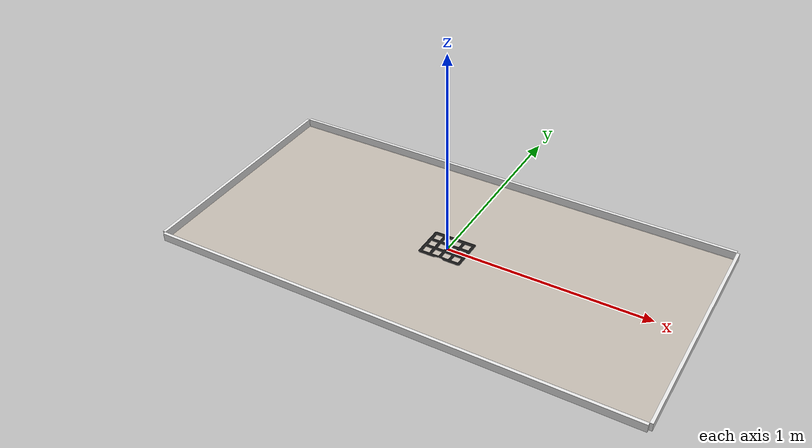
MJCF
<mujoco model="wro_2026_senior_mosaic_masters">
  <compiler angle="degree" coordinate="local"/>

  <option timestep="0.001" iterations="20" solver="Newton"/>

  <asset>
    <texture name="mat_tex" type="2d" file="mat.png"/>
    <material name="mat" texture="mat_tex" texrepeat="1 1"
              specular="0" shininess="0" reflectance="0"/>
    <material name="wall" rgba="0.90 0.90 0.90 1"/>

    <mesh name="mosaic_frame" file="mosaic_frame.stl"
          scale="0.001 0.001 0.001"/>

    <material name="lego_red"     rgba="0.85 0.10 0.10 1"/>
    <material name="lego_yellow"  rgba="0.95 0.80 0.10 1"/>
    <material name="lego_green"   rgba="0.15 0.70 0.25 1"/>
    <material name="lego_blue"    rgba="0.10 0.30 0.80 1"/>
    <material name="lego_white"   rgba="0.95 0.95 0.95 1"/>
    <material name="lego_black"   rgba="0.08 0.08 0.08 1"/>
    <material name="lego_gray"    rgba="0.55 0.55 0.58 1"/>
  </asset>

  <worldbody>
    <light pos=" 0.6 0 1.6" dir="0 0 -1" diffuse="0.95 0.95 0.95"/>
    <light pos="-0.6 0 1.6" dir="0 0 -1" diffuse="0.65 0.65 0.65"/>

    <!-- ===== MAT (2.362 × 1.143 m, printed texture) ===== -->
    <geom name="mat" type="plane" size="1.181 0.5715 0.01"
          material="mat" friction="0.8 0.02 0.0001"/>

    <geom name="wall_n" type="box" pos=" 0     0.579  0.02"
          size="1.181 0.0075 0.02" material="wall"/>
    <geom name="wall_s" type="box" pos=" 0    -0.579  0.02"
          size="1.181 0.0075 0.02" material="wall"/>
    <geom name="wall_e" type="box" pos=" 1.188 0      0.02"
          size="0.0075 0.5715 0.02" material="wall"/>
    <geom name="wall_w" type="box" pos="-1.188 0      0.02"
          size="0.0075 0.5715 0.02" material="wall"/>

    <geom name="mosaic_frame" type="mesh" mesh="mosaic_frame"
          pos="-0.075 0.050 0" material="lego_black"/>

    <lego_prop name="barrier_red_a"   ldr="props/senior_barrier_red_blue.ldr"  pos="-0.20 0.18 0.0"  mass="0.070"/>
    <lego_prop name="barrier_red_b"   ldr="props/senior_barrier_red_blue.ldr"  pos="0.20 0.18 0.0"   mass="0.070"/>
    <lego_prop name="barrier_black_a" ldr="props/senior_barrier_black_red.ldr" pos="-0.20 -0.18 0.0" mass="0.070"/>
    <lego_prop name="barrier_black_b" ldr="props/senior_barrier_black_red.ldr" pos="0.20 -0.18 0.0"  mass="0.070"/>

    <!-- Mission 3.1: 3 tools. -->
    <lego_prop name="rect_trowel"    ldr="props/rect_trowel.ldr"    pos="0.80 -0.45 0.0" mass="0.060"/>
    <lego_prop name="cement_bowl"    ldr="props/cement_bowl.ldr"    pos="0.95 -0.45 0.0" mass="0.050"/>
    <lego_prop name="masonry_trowel" ldr="props/masonry_trowel.ldr" pos="1.05 -0.45 0.0" mass="0.050"/>

    <!-- Mission 3.2: 24 mosaic tiles (6 of each: yellow/blue/green/white).
         All from one mosaic_tile.ldr; positions arranged on the
         left-end mat reservoir in a 4x6 grid. -->
    <lego_prop name="mosaic_tile_yellow_1" ldr="props/mosaic_tile.ldr" pos="-1.05 -0.30 0.0" mass="0.010" color="yellow"/>
    <lego_prop name="mosaic_tile_yellow_2" ldr="props/mosaic_tile.ldr" pos="-1.05 -0.18 0.0" mass="0.010" color="yellow"/>
    <lego_prop name="mosaic_tile_yellow_3" ldr="props/mosaic_tile.ldr" pos="-1.05 -0.06 0.0" mass="0.010" color="yellow"/>
    <lego_prop name="mosaic_tile_yellow_4" ldr="props/mosaic_tile.ldr" pos="-1.05 0.06 0.0"  mass="0.010" color="yellow"/>
    <lego_prop name="mosaic_tile_yellow_5" ldr="props/mosaic_tile.ldr" pos="-1.05 0.18 0.0"  mass="0.010" color="yellow"/>
    <lego_prop name="mosaic_tile_yellow_6" ldr="props/mosaic_tile.ldr" pos="-1.05 0.30 0.0"  mass="0.010" color="yellow"/>
    <lego_prop name="mosaic_tile_blue_1"   ldr="props/mosaic_tile.ldr" pos="-0.95 -0.30 0.0" mass="0.010" color="blue"/>
    <lego_prop name="mosaic_tile_blue_2"   ldr="props/mosaic_tile.ldr" pos="-0.95 -0.18 0.0" mass="0.010" color="blue"/>
    <lego_prop name="mosaic_tile_blue_3"   ldr="props/mosaic_tile.ldr" pos="-0.95 -0.06 0.0" mass="0.010" color="blue"/>
    <lego_prop name="mosaic_tile_blue_4"   ldr="props/mosaic_tile.ldr" pos="-0.95 0.06 0.0"  mass="0.010" color="blue"/>
    <lego_prop name="mosaic_tile_blue_5"   ldr="props/mosaic_tile.ldr" pos="-0.95 0.18 0.0"  mass="0.010" color="blue"/>
    <lego_prop name="mosaic_tile_blue_6"   ldr="props/mosaic_tile.ldr" pos="-0.95 0.30 0.0"  mass="0.010" color="blue"/>
    <lego_prop name="mosaic_tile_green_1"  ldr="props/mosaic_tile.ldr" pos="-0.85 -0.30 0.0" mass="0.010" color="green"/>
    <lego_prop name="mosaic_tile_green_2"  ldr="props/mosaic_tile.ldr" pos="-0.85 -0.18 0.0" mass="0.010" color="green"/>
    <lego_prop name="mosaic_tile_green_3"  ldr="props/mosaic_tile.ldr" pos="-0.85 -0.06 0.0" mass="0.010" color="green"/>
    <lego_prop name="mosaic_tile_green_4"  ldr="props/mosaic_tile.ldr" pos="-0.85 0.06 0.0"  mass="0.010" color="green"/>
    <lego_prop name="mosaic_tile_green_5"  ldr="props/mosaic_tile.ldr" pos="-0.85 0.18 0.0"  mass="0.010" color="green"/>
    <lego_prop name="mosaic_tile_green_6"  ldr="props/mosaic_tile.ldr" pos="-0.85 0.30 0.0"  mass="0.010" color="green"/>
    <lego_prop name="mosaic_tile_white_1"  ldr="props/mosaic_tile.ldr" pos="-0.75 -0.30 0.0" mass="0.010" color="white"/>
    <lego_prop name="mosaic_tile_white_2"  ldr="props/mosaic_tile.ldr" pos="-0.75 -0.18 0.0" mass="0.010" color="white"/>
    <lego_prop name="mosaic_tile_white_3"  ldr="props/mosaic_tile.ldr" pos="-0.75 -0.06 0.0" mass="0.010" color="white"/>
    <lego_prop name="mosaic_tile_white_4"  ldr="props/mosaic_tile.ldr" pos="-0.75 0.06 0.0"  mass="0.010" color="white"/>
    <lego_prop name="mosaic_tile_white_5"  ldr="props/mosaic_tile.ldr" pos="-0.75 0.18 0.0"  mass="0.010" color="white"/>
    <lego_prop name="mosaic_tile_white_6"  ldr="props/mosaic_tile.ldr" pos="-0.75 0.30 0.0"  mass="0.010" color="white"/>

    <!-- Mission 3.3: 40 cement elements (10 of each: yellow/blue/green/white).
         Arranged in a 5x8 grid on the cement storage area (right side). -->
    <lego_prop name="cement_yellow_1"  ldr="props/cement_element.ldr" pos="0.85 -0.45 0.0" mass="0.005" color="yellow"/>
    <lego_prop name="cement_yellow_2"  ldr="props/cement_element.ldr" pos="0.90 -0.45 0.0" mass="0.005" color="yellow"/>
    <lego_prop name="cement_yellow_3"  ldr="props/cement_element.ldr" pos="0.95 -0.45 0.0" mass="0.005" color="yellow"/>
    <lego_prop name="cement_yellow_4"  ldr="props/cement_element.ldr" pos="1.00 -0.45 0.0" mass="0.005" color="yellow"/>
    <lego_prop name="cement_yellow_5"  ldr="props/cement_element.ldr" pos="1.05 -0.45 0.0" mass="0.005" color="yellow"/>
    <lego_prop name="cement_yellow_6"  ldr="props/cement_element.ldr" pos="0.85 -0.40 0.0" mass="0.005" color="yellow"/>
    <lego_prop name="cement_yellow_7"  ldr="props/cement_element.ldr" pos="0.90 -0.40 0.0" mass="0.005" color="yellow"/>
    <lego_prop name="cement_yellow_8"  ldr="props/cement_element.ldr" pos="0.95 -0.40 0.0" mass="0.005" color="yellow"/>
    <lego_prop name="cement_yellow_9"  ldr="props/cement_element.ldr" pos="1.00 -0.40 0.0" mass="0.005" color="yellow"/>
    <lego_prop name="cement_yellow_10" ldr="props/cement_element.ldr" pos="1.05 -0.40 0.0" mass="0.005" color="yellow"/>
    <lego_prop name="cement_blue_1"    ldr="props/cement_element.ldr" pos="0.85 -0.30 0.0" mass="0.005" color="blue"/>
    <lego_prop name="cement_blue_2"    ldr="props/cement_element.ldr" pos="0.90 -0.30 0.0" mass="0.005" color="blue"/>
    <lego_prop name="cement_blue_3"    ldr="props/cement_element.ldr" pos="0.95 -0.30 0.0" mass="0.005" color="blue"/>
    <lego_prop name="cement_blue_4"    ldr="props/cement_element.ldr" pos="1.00 -0.30 0.0" mass="0.005" color="blue"/>
    <lego_prop name="cement_blue_5"    ldr="props/cement_element.ldr" pos="1.05 -0.30 0.0" mass="0.005" color="blue"/>
    <lego_prop name="cement_blue_6"    ldr="props/cement_element.ldr" pos="0.85 -0.25 0.0" mass="0.005" color="blue"/>
    <lego_prop name="cement_blue_7"    ldr="props/cement_element.ldr" pos="0.90 -0.25 0.0" mass="0.005" color="blue"/>
    <lego_prop name="cement_blue_8"    ldr="props/cement_element.ldr" pos="0.95 -0.25 0.0" mass="0.005" color="blue"/>
    <lego_prop name="cement_blue_9"    ldr="props/cement_element.ldr" pos="1.00 -0.25 0.0" mass="0.005" color="blue"/>
    <lego_prop name="cement_blue_10"   ldr="props/cement_element.ldr" pos="1.05 -0.25 0.0" mass="0.005" color="blue"/>
    <lego_prop name="cement_green_1"   ldr="props/cement_element.ldr" pos="0.85 -0.15 0.0" mass="0.005" color="green"/>
    <lego_prop name="cement_green_2"   ldr="props/cement_element.ldr" pos="0.90 -0.15 0.0" mass="0.005" color="green"/>
    <lego_prop name="cement_green_3"   ldr="props/cement_element.ldr" pos="0.95 -0.15 0.0" mass="0.005" color="green"/>
    <lego_prop name="cement_green_4"   ldr="props/cement_element.ldr" pos="1.00 -0.15 0.0" mass="0.005" color="green"/>
    <lego_prop name="cement_green_5"   ldr="props/cement_element.ldr" pos="1.05 -0.15 0.0" mass="0.005" color="green"/>
    <lego_prop name="cement_green_6"   ldr="props/cement_element.ldr" pos="0.85 -0.10 0.0" mass="0.005" color="green"/>
    <lego_prop name="cement_green_7"   ldr="props/cement_element.ldr" pos="0.90 -0.10 0.0" mass="0.005" color="green"/>
    <lego_prop name="cement_green_8"   ldr="props/cement_element.ldr" pos="0.95 -0.10 0.0" mass="0.005" color="green"/>
    <lego_prop name="cement_green_9"   ldr="props/cement_element.ldr" pos="1.00 -0.10 0.0" mass="0.005" color="green"/>
    <lego_prop name="cement_green_10"  ldr="props/cement_element.ldr" pos="1.05 -0.10 0.0" mass="0.005" color="green"/>
    <lego_prop name="cement_white_1"   ldr="props/cement_element.ldr" pos="0.85 0.00 0.0"  mass="0.005" color="white"/>
    <lego_prop name="cement_white_2"   ldr="props/cement_element.ldr" pos="0.90 0.00 0.0"  mass="0.005" color="white"/>
    <lego_prop name="cement_white_3"   ldr="props/cement_element.ldr" pos="0.95 0.00 0.0"  mass="0.005" color="white"/>
    <lego_prop name="cement_white_4"   ldr="props/cement_element.ldr" pos="1.00 0.00 0.0"  mass="0.005" color="white"/>
    <lego_prop name="cement_white_5"   ldr="props/cement_element.ldr" pos="1.05 0.00 0.0"  mass="0.005" color="white"/>
    <lego_prop name="cement_white_6"   ldr="props/cement_element.ldr" pos="0.85 0.05 0.0"  mass="0.005" color="white"/>
    <lego_prop name="cement_white_7"   ldr="props/cement_element.ldr" pos="0.90 0.05 0.0"  mass="0.005" color="white"/>
    <lego_prop name="cement_white_8"   ldr="props/cement_element.ldr" pos="0.95 0.05 0.0"  mass="0.005" color="white"/>
    <lego_prop name="cement_white_9"   ldr="props/cement_element.ldr" pos="1.00 0.05 0.0"  mass="0.005" color="white"/>
    <lego_prop name="cement_white_10"  ldr="props/cement_element.ldr" pos="1.05 0.05 0.0"  mass="0.005" color="white"/>

    <!-- Overhead camera for scene preview. -->
    <camera name="overhead" pos="0 0 2.6" xyaxes="1 0 0 0 1 0"/>
  </worldbody>
</mujoco>
